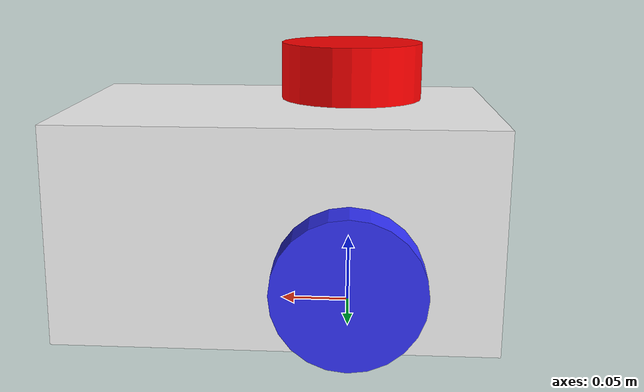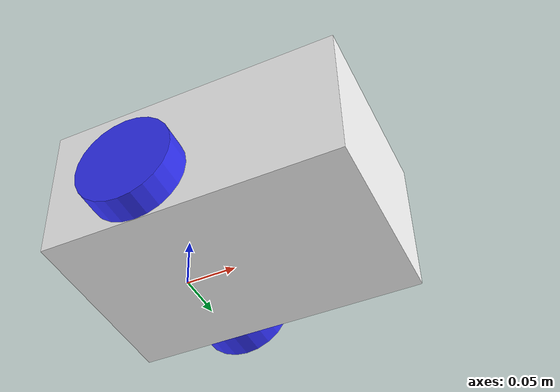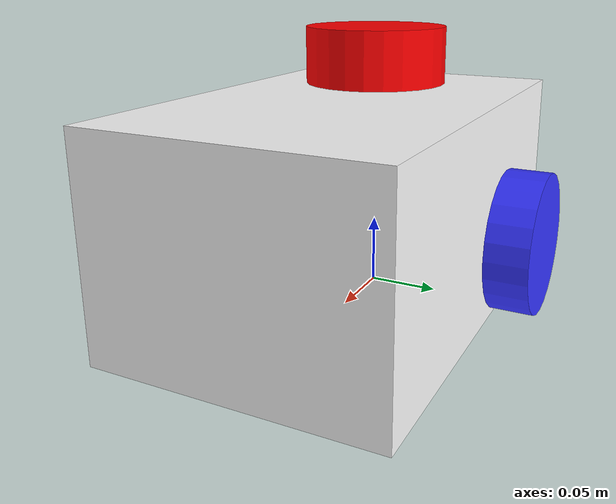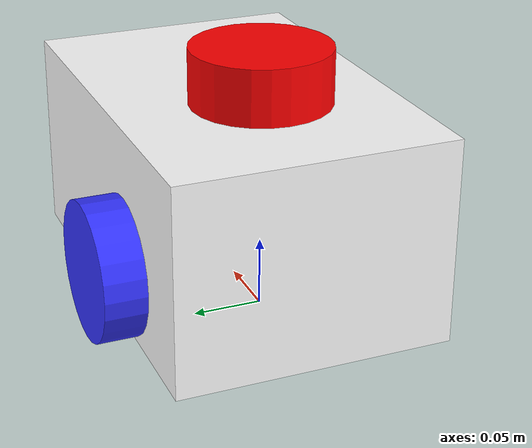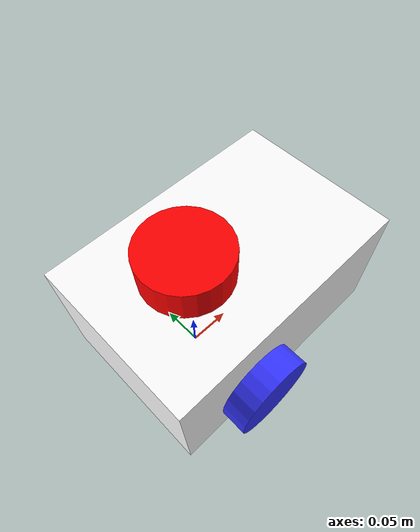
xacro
<?xml version="1.0"?>
<robot xmlns:xacro="http://www.ros.org/wiki/xacro" name="robot">

    <xacro:include filename="inertial_macros.xacro"/>

    <material name="white"> <color rgba="1 1 1 1"/> </material>
    <material name="blue"> <color rgba="0.2 0.2 1 1"/> </material>
    <material name="black"> <color rgba="0 0 0 1"/> </material>
    <material name="red"> <color rgba="1 0 0 1"/> </material>

    <link name="base_link"></link>

    <joint name="chassis_joint" type="fixed">
        <parent link="base_link"/>
        <child link="chassis"/>
        <origin xyz="-0.1 0 0"/>
    </joint>

    <link name="chassis">
        <visual>
            <origin xyz="0.15 0 0.075"/>
            <geometry> <box size="0.3 0.2 0.15"/> </geometry>
            <material name="white"/>
        </visual>
        <collision>
            <origin xyz="0.15 0 0.075"/>
            <geometry> <box size="0.3 0.2 0.15"/> </geometry>
        </collision>
        <xacro:inertial_box mass="0.5" x="0.3" y="0.2" z="0.15">
            <origin xyz="0.15 0 0.075" rpy="0 0 0"/>
        </xacro:inertial_box>
    </link>

    <gazebo reference="chassis">
        <material>Gazebo/White</material>
    </gazebo>

    <joint name="left_wheel_joint" type="continuous">
        <parent link="base_link"/>
        <child link="left_wheel"/>
        <origin xyz="0 0.11 0.05" rpy="-${pi/2} 0 0"/>
        <axis xyz="0 0 1"/>
    </joint>

    <link name="left_wheel">
        <visual>
            <geometry> <cylinder radius="0.05" length="0.04"/> </geometry>
            <material name="blue"/>
        </visual>
        <collision>
            <geometry> <cylinder radius="0.05" length="0.04"/> </geometry>
        </collision>
        <xacro:inertial_cylinder mass="0.1" length="0.04" radius="0.05">
            <origin xyz="0 0 0" rpy="0 0 0"/>
        </xacro:inertial_cylinder>
    </link>

    <gazebo reference="left_wheel">
        <material>Gazebo/Blue</material>
    </gazebo>

    <joint name="right_wheel_joint" type="continuous">
        <parent link="base_link"/>
        <child link="right_wheel"/>
        <origin xyz="0 -0.11 0.05" rpy="-${pi/2} 0 0"/>
        <axis xyz="0 0 1"/>
    </joint>

    <link name="right_wheel">
        <visual>
            <geometry> <cylinder radius="0.05" length="0.04"/> </geometry>
            <material name="blue"/>
        </visual>
        <collision>
            <geometry> <cylinder radius="0.05" length="0.04"/> </geometry>
        </collision>
        <xacro:inertial_cylinder mass="0.1" length="0.04" radius="0.05">
            <origin xyz="0 0 0" rpy="0 0 0"/>
        </xacro:inertial_cylinder>
    </link>

    <gazebo reference="right_wheel">
        <material>Gazebo/Blue</material>
    </gazebo>

    <joint name="caster_wheel_joint" type="fixed">
        <parent link="chassis"/>
        <child link="caster_wheel"/>
        <origin xyz="0.24 0 0.05"/>
    </joint>

    <link name="caster_wheel">
        <visual>
            <geometry> <sphere radius="0.05"/> </geometry>
            <material name="black"/>
        </visual>
        <collision>
            <geometry> <sphere radius="0.05"/> </geometry>
        </collision>
        <xacro:inertial_sphere mass="0.1" radius="0.05">
            <origin xyz="0 0 0" rpy="0 0 0"/>
        </xacro:inertial_sphere>
    </link>

    <gazebo reference="caster_wheel">
        <material>Gazebo/Black</material>
        <mu1 value="0.001"/>
        <mu2 value="0.001"/>
    </gazebo>

    <joint name="laser_joint" type="fixed">
        <parent link="chassis"/>
        <child link="laser_frame"/>
        <origin xyz="0.1 0 0.175" rpy="0 0 0"/>
    </joint>

    <link name="laser_frame">
        <visual>
            <geometry> <cylinder radius="0.05" length="0.04"/> </geometry>
            <material name="red"/>
        </visual>
        <collision>
            <geometry> <cylinder radius="0.05" length="0.04"/> </geometry>
        </collision>
        <xacro:inertial_cylinder mass="0.1" length="0.04" radius="0.05">
            <origin xyz="0 0 0" rpy="0 0 0"/>
        </xacro:inertial_cylinder>
    </link>

    <gazebo reference="laser_frame">
        <material>Gazebo/Red</material>
        <sensor name="lidar" type="gpu_lidar">
            <pose>0 0 0 0 0 0</pose>
            <topic>scan</topic>
            <update_rate>10</update_rate>
            <ray>
                <scan>
                    <horizontal>
                        <samples>360</samples>
                        <min_angle>-3.14</min_angle>
                        <max_angle>3.14</max_angle>
                    </horizontal>
                </scan>
                <range>
                    <min>0.3</min>
                    <max>12.0</max>
                </range>
            </ray>
        </sensor>
    </gazebo>

    <gazebo>
        <plugin name="gz::sim::systems::DiffDrive" filename="gz-sim-diff-drive-system">
            <left_joint>left_wheel_joint</left_joint>
            <right_joint>right_wheel_joint</right_joint>
            <wheel_separation>0.22</wheel_separation>
            <wheel_radius>0.05</wheel_radius>
            <topic>cmd_vel</topic>
            <odom_topic>odom</odom_topic>
            <frame_id>odom</frame_id>
            <child_frame_id>base_link</child_frame_id>
        </plugin>

        <plugin name="gz::sim::systems::Sensors" filename="gz-sim-sensors-system">
            <render_engine>ogre2</render_engine>
        </plugin>
    </gazebo>

</robot>

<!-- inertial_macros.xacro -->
<robot xmlns:xacro="http://www.ros.org/wiki/xacro">
    <xacro:macro name="inertial_sphere" params="mass radius *origin">
        <inertial>
            <xacro:insert_block name="origin"/>
            <mass value="${mass}"/>
            <inertia ixx="${(2/5) * mass * (radius*radius)}" ixy="0.0" ixz="0.0" iyy="${(2/5) * mass * (radius*radius)}" iyz="0.0" izz="${(2/5) * mass * (radius*radius)}"/>
        </inertial>
    </xacro:macro>
    <xacro:macro name="inertial_box" params="mass x y z *origin">
        <inertial>
            <xacro:insert_block name="origin"/>
            <mass value="${mass}"/>
            <inertia ixx="${(1/12) * mass * (y*y+z*z)}" ixy="0.0" ixz="0.0" iyy="${(1/12) * mass * (x*x+z*z)}" iyz="0.0" izz="${(1/12) * mass * (x*x+y*y)}"/>
        </inertial>
    </xacro:macro>
    <xacro:macro name="inertial_cylinder" params="mass length radius *origin">
        <inertial>
            <xacro:insert_block name="origin"/>
            <mass value="${mass}"/>
            <inertia ixx="${(1/12) * mass * (3*radius*radius + length*length)}" ixy="0.0" ixz="0.0" iyy="${(1/12) * mass * (3*radius*radius + length*length)}" iyz="0.0" izz="${(1/2) * mass * (radius*radius)}"/>
        </inertial>
    </xacro:macro>
</robot>
